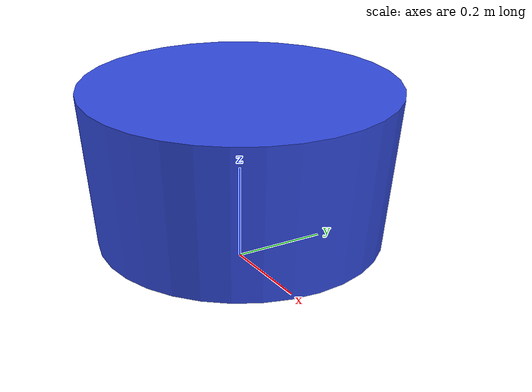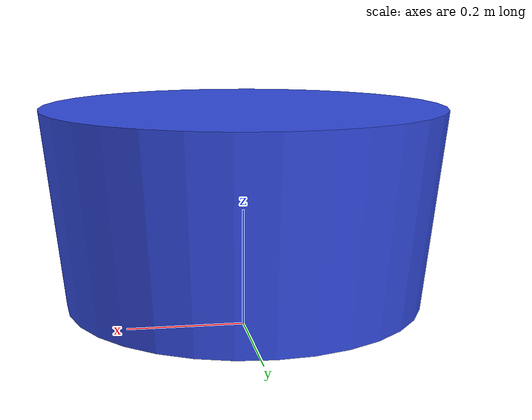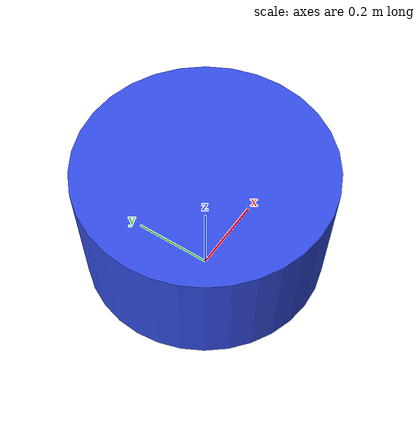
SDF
<?xml version="1.0"?>
<sdf version="1.8">
  <!-- SAUVC 2026 Blue Drum
       Using mesh from sauvc_sim
       Color: Blue
  -->
  <model name="blue_drum">
    <static>true</static>

    <link name="link_0">
      <pose>0 0 0 1.5708 0 0</pose>
      <inertial>
        <mass>5.0</mass>
        <inertia>
          <ixx>0.166667</ixx>
          <ixy>0</ixy>
          <ixz>0</ixz>
          <iyy>0.166667</iyy>
          <iyz>0</iyz>
          <izz>0.166667</izz>
        </inertia>
      </inertial>

      <visual name="visual">
        <geometry>
          <mesh>
            <uri>model://blue_drum/meshes/drum.obj</uri>
            <scale>0.3 0.3 0.3</scale>
          </mesh>
        </geometry>
        <material>
          <ambient>0.1 0.2 0.8 1</ambient>
          <diffuse>0.2 0.3 0.9 1</diffuse>
          <specular>0.3 0.3 0.4 1</specular>
        </material>
      </visual>

      <collision name="collision">
        <geometry>
          <mesh>
            <uri>model://blue_drum/meshes/drum.obj</uri>
            <scale>0.3 0.3 0.3</scale>
          </mesh>
        </geometry>
      </collision>
    </link>
  </model>
</sdf>
